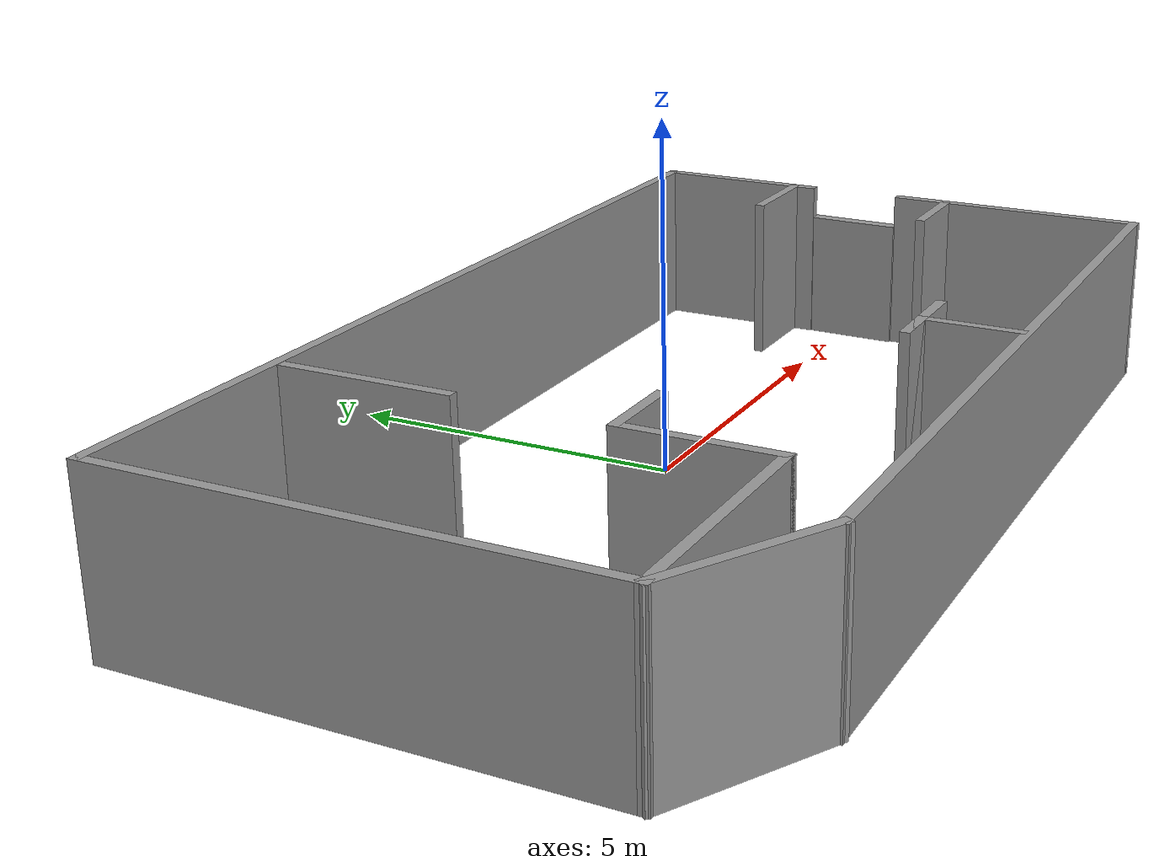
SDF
<?xml version='1.0'?>
<sdf version='1.7'>
  <model name='home'>
    <pose>-0.451146 -0.826226 0 0 -0 0</pose>
    <link name='Door_0'>
      <collision name='Door_0_Collision'>
        <geometry>
          <box>
            <size>1.49016 0.2 2</size>
          </box>
        </geometry>
        <pose>0 0 1 0 -0 0</pose>
      </collision>
      <visual name='Door_0_Visual'>
        <pose>0 0 1 0 -0 0</pose>
        <geometry>
          <box>
            <size>1.49016 0.2 2</size>
          </box>
        </geometry>
        <material>
          <script>
            <uri>file://media/materials/scripts/gazebo.material</uri>
            <name>Gazebo/Grey</name>
          </script>
        </material>
      </visual>
      <pose>7.19766 0.663362 0 0 -0 1.55187</pose>
    </link>
    <link name='Wall_11'>
      <collision name='Wall_11_Collision'>
        <geometry>
          <box>
            <size>2.5 0.15 2.5</size>
          </box>
        </geometry>
        <pose>0 0 1.25 0 -0 0</pose>
      </collision>
      <visual name='Wall_11_Visual'>
        <pose>0 0 1.25 0 -0 0</pose>
        <geometry>
          <box>
            <size>2.5 0.15 2.5</size>
          </box>
        </geometry>
        <material>
          <script>
            <uri>file://media/materials/scripts/gazebo.material</uri>
            <name>Gazebo/Grey</name>
          </script>
          <ambient>1 1 1 1</ambient>
        </material>
        <meta>
          <layer>0</layer>
        </meta>
      </visual>
      <pose>-3.80661 2.69362 0 0 -0 1.5708</pose>
    </link>
    <link name='Wall_13'>
      <collision name='Wall_13_Collision'>
        <geometry>
          <box>
            <size>1.5 0.15 2.5</size>
          </box>
        </geometry>
        <pose>0 0 1.25 0 -0 0</pose>
      </collision>
      <visual name='Wall_13_Visual'>
        <pose>0 0 1.25 0 -0 0</pose>
        <geometry>
          <box>
            <size>1.5 0.15 2.5</size>
          </box>
        </geometry>
        <material>
          <script>
            <uri>file://media/materials/scripts/gazebo.material</uri>
            <name>Gazebo/Grey</name>
          </script>
          <ambient>1 1 1 1</ambient>
        </material>
        <meta>
          <layer>0</layer>
        </meta>
      </visual>
      <pose>1.283 -3.24579 0 0 -0 1.5708</pose>
    </link>
    <link name='Wall_14'>
      <collision name='Wall_14_Collision'>
        <geometry>
          <box>
            <size>0.75 0.15 2.5</size>
          </box>
        </geometry>
        <pose>0 0 1.25 0 -0 0</pose>
      </collision>
      <visual name='Wall_14_Visual'>
        <pose>0 0 1.25 0 -0 0</pose>
        <geometry>
          <box>
            <size>0.75 0.15 2.5</size>
          </box>
        </geometry>
        <material>
          <script>
            <uri>file://media/materials/scripts/gazebo.material</uri>
            <name>Gazebo/Grey</name>
          </script>
          <ambient>1 1 1 1</ambient>
        </material>
        <meta>
          <layer>0</layer>
        </meta>
      </visual>
      <pose>0.983002 -2.57079 0 0 -0 3.14159</pose>
    </link>
    <link name='Wall_15'>
      <collision name='Wall_15_Collision'>
        <geometry>
          <box>
            <size>1.5 0.15 2.5</size>
          </box>
        </geometry>
        <pose>0 0 1.25 0 -0 0</pose>
      </collision>
      <visual name='Wall_15_Visual'>
        <pose>0 0 1.25 0 -0 0</pose>
        <geometry>
          <box>
            <size>1.5 0.15 2.5</size>
          </box>
        </geometry>
        <material>
          <script>
            <uri>file://media/materials/scripts/gazebo.material</uri>
            <name>Gazebo/Grey</name>
          </script>
          <ambient>1 1 1 1</ambient>
        </material>
        <meta>
          <layer>0</layer>
        </meta>
      </visual>
      <pose>1.358 -2.57079 0 0 -0 0</pose>
    </link>
    <link name='Wall_19'>
      <collision name='Wall_19_Collision'>
        <geometry>
          <box>
            <size>3.5 0.15 2.5</size>
          </box>
        </geometry>
        <pose>0 0 1.25 0 -0 0</pose>
      </collision>
      <visual name='Wall_19_Visual'>
        <pose>0 0 1.25 0 -0 0</pose>
        <geometry>
          <box>
            <size>3.5 0.15 2.5</size>
          </box>
        </geometry>
        <material>
          <script>
            <uri>file://media/materials/scripts/gazebo.material</uri>
            <name>Gazebo/Grey</name>
          </script>
          <ambient>1 1 1 1</ambient>
        </material>
        <meta>
          <layer>0</layer>
        </meta>
      </visual>
      <pose>-5.50385 -2.82377 0 0 -0 0</pose>
    </link>
    <link name='Wall_2'>
      <collision name='Wall_2_Collision'>
        <geometry>
          <box>
            <size>2.5 0.15 2.5</size>
          </box>
        </geometry>
        <pose>0 0 1.25 0 -0 0</pose>
      </collision>
      <visual name='Wall_2_Visual'>
        <pose>0 0 1.25 0 -0 0</pose>
        <geometry>
          <box>
            <size>2.5 0.15 2.5</size>
          </box>
        </geometry>
        <material>
          <script>
            <uri>file://media/materials/scripts/gazebo.material</uri>
            <name>Gazebo/Grey</name>
          </script>
          <ambient>1 1 1 1</ambient>
        </material>
        <meta>
          <layer>0</layer>
        </meta>
      </visual>
      <pose>-6.16127 -3.41127 0 0 -0 -0.523599</pose>
    </link>
    <link name='Wall_20'>
      <collision name='Wall_20_Collision'>
        <geometry>
          <box>
            <size>2.25 0.15 2.5</size>
          </box>
        </geometry>
        <pose>0 0 1.25 0 -0 0</pose>
      </collision>
      <visual name='Wall_20_Visual'>
        <pose>0 0 1.25 0 -0 0</pose>
        <geometry>
          <box>
            <size>2.25 0.15 2.5</size>
          </box>
        </geometry>
        <material>
          <script>
            <uri>file://media/materials/scripts/gazebo.material</uri>
            <name>Gazebo/Grey</name>
          </script>
          <ambient>1 1 1 1</ambient>
        </material>
        <meta>
          <layer>0</layer>
        </meta>
      </visual>
      <pose>-3.82885 -1.77377 0 0 -0 1.5708</pose>
    </link>
    <link name='Wall_21'>
      <collision name='Wall_21_Collision'>
        <geometry>
          <box>
            <size>1.25 0.15 2.5</size>
          </box>
        </geometry>
        <pose>0 0 1.25 0 -0 0</pose>
      </collision>
      <visual name='Wall_21_Visual'>
        <pose>0 0 1.25 0 -0 0</pose>
        <geometry>
          <box>
            <size>1.25 0.15 2.5</size>
          </box>
        </geometry>
        <material>
          <script>
            <uri>file://media/materials/scripts/gazebo.material</uri>
            <name>Gazebo/Grey</name>
          </script>
          <ambient>1 1 1 1</ambient>
        </material>
        <meta>
          <layer>0</layer>
        </meta>
      </visual>
      <pose>-3.27885 -0.723774 0 0 -0 0</pose>
    </link>
    <link name='Wall_23'>
      <collision name='Wall_23_Collision'>
        <geometry>
          <box>
            <size>1.25 0.15 2.5</size>
          </box>
        </geometry>
        <pose>0 0 1.25 0 -0 0</pose>
      </collision>
      <visual name='Wall_23_Visual'>
        <pose>0 0 1.25 0 -0 0</pose>
        <geometry>
          <box>
            <size>1.25 0.15 2.5</size>
          </box>
        </geometry>
        <material>
          <script>
            <uri>file://media/materials/scripts/gazebo.material</uri>
            <name>Gazebo/Grey</name>
          </script>
          <ambient>1 1 1 1</ambient>
        </material>
        <meta>
          <layer>0</layer>
        </meta>
      </visual>
      <pose>6.55532 -0.929987 0 0 -0 0</pose>
    </link>
    <link name='Wall_27'>
      <collision name='Wall_27_Collision'>
        <geometry>
          <box>
            <size>1.5 0.15 2.5</size>
          </box>
        </geometry>
        <pose>0 0 1.25 0 -0 0</pose>
      </collision>
      <visual name='Wall_27_Visual'>
        <pose>0 0 1.25 0 -0 0</pose>
        <geometry>
          <box>
            <size>1.5 0.15 2.5</size>
          </box>
        </geometry>
        <material>
          <script>
            <uri>file://media/materials/scripts/gazebo.material</uri>
            <name>Gazebo/Grey</name>
          </script>
          <ambient>1 1 1 1</ambient>
        </material>
        <meta>
          <layer>0</layer>
        </meta>
      </visual>
      <pose>6.45295 1.7285 0 0 -0 0</pose>
    </link>
    <link name='Wall_3'>
      <collision name='Wall_3_Collision'>
        <geometry>
          <box>
            <size>12.5 0.15 2.5</size>
          </box>
        </geometry>
        <pose>0 0 1.25 0 -0 0</pose>
      </collision>
      <visual name='Wall_3_Visual'>
        <pose>0 0 1.25 0 -0 0</pose>
        <geometry>
          <box>
            <size>12.5 0.15 2.5</size>
          </box>
        </geometry>
        <material>
          <script>
            <uri>file://media/materials/scripts/gazebo.material</uri>
            <name>Gazebo/Grey</name>
          </script>
          <ambient>1 1 1 1</ambient>
        </material>
        <meta>
          <layer>0</layer>
        </meta>
      </visual>
      <pose>1.03131 -3.99877 0 0 -0 0</pose>
    </link>
    <link name='Wall_4'>
      <collision name='Wall_4_Collision'>
        <geometry>
          <box>
            <size>4 0.15 2.5</size>
          </box>
        </geometry>
        <pose>0 0 1.25 0 -0 0</pose>
      </collision>
      <visual name='Wall_4_Visual'>
        <pose>0 0 1.25 0 -0 0</pose>
        <geometry>
          <box>
            <size>4 0.15 2.5</size>
          </box>
        </geometry>
        <material>
          <script>
            <uri>file://media/materials/scripts/gazebo.material</uri>
            <name>Gazebo/Grey</name>
          </script>
          <ambient>1 1 1 1</ambient>
        </material>
        <meta>
          <layer>0</layer>
        </meta>
      </visual>
      <pose>7.20631 -2.07377 0 0 -0 1.5708</pose>
    </link>
    <link name='Wall_7'>
      <collision name='Wall_7_Collision'>
        <geometry>
          <box>
            <size>7 0.15 2.5</size>
          </box>
        </geometry>
        <pose>0 0 1.25 0 -0 0</pose>
      </collision>
      <visual name='Wall_7_Visual'>
        <pose>0 0 1.25 0 -0 0</pose>
        <geometry>
          <box>
            <size>7 0.15 2.5</size>
          </box>
        </geometry>
        <material>
          <script>
            <uri>file://media/materials/scripts/gazebo.material</uri>
            <name>Gazebo/Grey</name>
          </script>
          <ambient>1 1 1 1</ambient>
        </material>
        <meta>
          <layer>0</layer>
        </meta>
      </visual>
      <pose>-7.17885 0.601226 0 0 -0 1.5708</pose>
    </link>
    <link name='Wall_8'>
      <collision name='Wall_8_Collision'>
        <geometry>
          <box>
            <size>14.5 0.15 2.5</size>
          </box>
        </geometry>
        <pose>0 0 1.25 0 -0 0</pose>
      </collision>
      <visual name='Wall_8_Visual'>
        <pose>0 0 1.25 0 -0 0</pose>
        <geometry>
          <box>
            <size>14.5 0.15 2.5</size>
          </box>
        </geometry>
        <material>
          <script>
            <uri>file://media/materials/scripts/gazebo.material</uri>
            <name>Gazebo/Grey</name>
          </script>
          <ambient>1 1 1 1</ambient>
        </material>
        <meta>
          <layer>0</layer>
        </meta>
      </visual>
      <pose>-0.003854 4.02623 0 0 -0 0</pose>
    </link>
    <link name='Wall_9'>
      <collision name='Wall_9_Collision'>
        <geometry>
          <box>
            <size>2.75 0.15 2.5</size>
          </box>
        </geometry>
        <pose>0 0 1.25 0 -0 0</pose>
      </collision>
      <visual name='Wall_9_Visual'>
        <pose>0 0 1.25 0 -0 0</pose>
        <geometry>
          <box>
            <size>2.75 0.15 2.5</size>
          </box>
        </geometry>
        <material>
          <script>
            <uri>file://media/materials/scripts/gazebo.material</uri>
            <name>Gazebo/Grey</name>
          </script>
          <ambient>1 1 1 1</ambient>
        </material>
        <meta>
          <layer>0</layer>
        </meta>
      </visual>
      <pose>7.17115 2.72623 0 0 -0 -1.5708</pose>
    </link>
    <static>1</static>
  </model>
</sdf>
